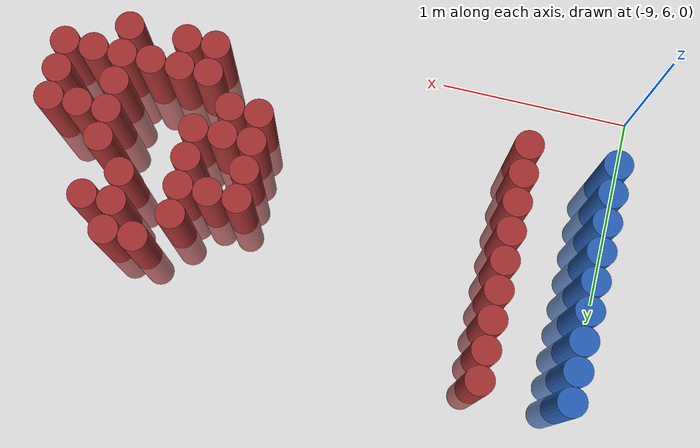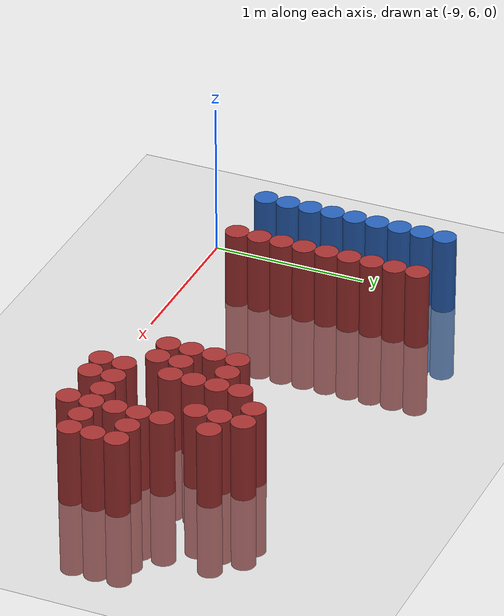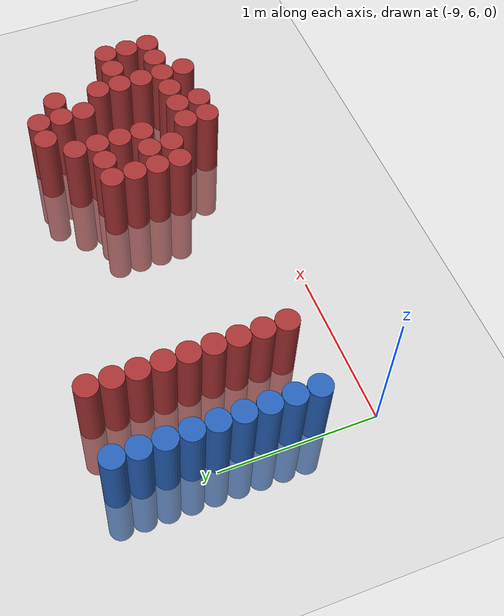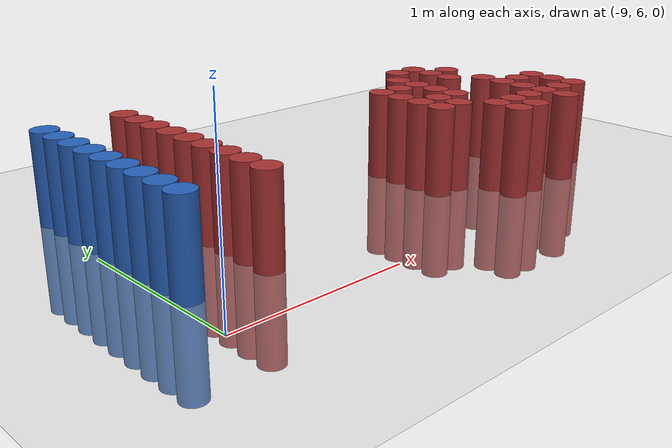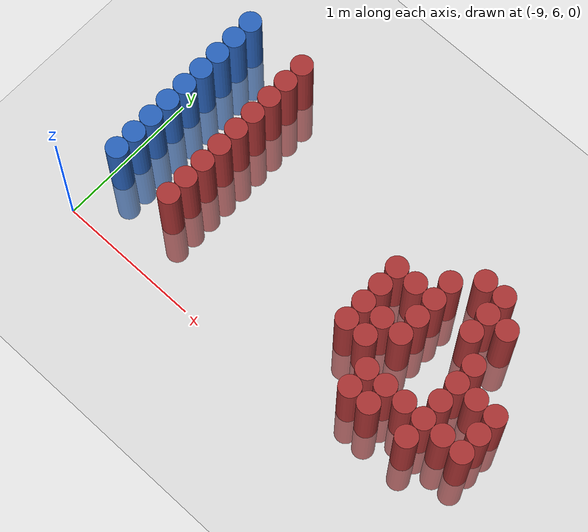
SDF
<sdf version="1.6">
 <world name="default">
  <model name="ground_plane">
   <static>1</static>
   <link name="link">
    <collision name="collision">
     <geometry><plane><normal>0 0 1</normal><size>100 100</size></plane></geometry>
     <surface><friction><ode><mu>100</mu><mu2>50</mu2></ode></friction></surface>
    </collision>
    <visual name="visual">
     <cast_shadows>0</cast_shadows>
     <geometry><plane><normal>0 0 1</normal><size>100 100</size></plane></geometry>
     <material>
      <script><uri>file://media/materials/scripts/gazebo.material</uri><name>Gazebo/Grey</name></script>
     </material>
    </visual>
   </link>
  </model>
  <model name="unit_cylinder_133">
   <static>1</static>
   <pose>-8.925000 6.375000 0.000000 0.000000 0.000000 0.000000</pose>
   <link name="link">
    <inertial>
     <mass>1</mass>
     <inertia><ixx>0.145833</ixx><ixy>0</ixy><ixz>0</ixz><iyy>0.145833</iyy><iyz>0</iyz><izz>0.125</izz></inertia>
    </inertial>
    <collision name="collision">
     <geometry><cylinder><radius>0.075000</radius><length>1</length></cylinder></geometry>
    </collision>
    <visual name="visual">
     <geometry><cylinder><radius>0.075000</radius><length>1</length></cylinder></geometry>
     <material>
      <ambient>0.152000 0.379000 0.720000 1</ambient>
      <diffuse>0.152000 0.379000 0.720000 1</diffuse>
     </material>
     <material>
      <script><name>Gazebo/Grey</name><uri>file://media/materials/scripts/gazebo.material</uri></script>
     </material>
    </visual>
   </link>
  </model>
  <model name="unit_cylinder_134">
   <static>1</static>
   <pose>-8.925000 6.525000 0.000000 0.000000 0.000000 0.000000</pose>
   <link name="link">
    <inertial>
     <mass>1</mass>
     <inertia><ixx>0.145833</ixx><ixy>0</ixy><ixz>0</ixz><iyy>0.145833</iyy><iyz>0</iyz><izz>0.125</izz></inertia>
    </inertial>
    <collision name="collision">
     <geometry><cylinder><radius>0.075000</radius><length>1</length></cylinder></geometry>
    </collision>
    <visual name="visual">
     <geometry><cylinder><radius>0.075000</radius><length>1</length></cylinder></geometry>
     <material>
      <ambient>0.152000 0.379000 0.720000 1</ambient>
      <diffuse>0.152000 0.379000 0.720000 1</diffuse>
     </material>
     <material>
      <script><name>Gazebo/Grey</name><uri>file://media/materials/scripts/gazebo.material</uri></script>
     </material>
    </visual>
   </link>
  </model>
  <model name="unit_cylinder_135">
   <static>1</static>
   <pose>-8.925000 6.675000 0.000000 0.000000 0.000000 0.000000</pose>
   <link name="link">
    <inertial>
     <mass>1</mass>
     <inertia><ixx>0.145833</ixx><ixy>0</ixy><ixz>0</ixz><iyy>0.145833</iyy><iyz>0</iyz><izz>0.125</izz></inertia>
    </inertial>
    <collision name="collision">
     <geometry><cylinder><radius>0.075000</radius><length>1</length></cylinder></geometry>
    </collision>
    <visual name="visual">
     <geometry><cylinder><radius>0.075000</radius><length>1</length></cylinder></geometry>
     <material>
      <ambient>0.152000 0.379000 0.720000 1</ambient>
      <diffuse>0.152000 0.379000 0.720000 1</diffuse>
     </material>
     <material>
      <script><name>Gazebo/Grey</name><uri>file://media/materials/scripts/gazebo.material</uri></script>
     </material>
    </visual>
   </link>
  </model>
  <model name="unit_cylinder_136">
   <static>1</static>
   <pose>-8.925000 6.825000 0.000000 0.000000 0.000000 0.000000</pose>
   <link name="link">
    <inertial>
     <mass>1</mass>
     <inertia><ixx>0.145833</ixx><ixy>0</ixy><ixz>0</ixz><iyy>0.145833</iyy><iyz>0</iyz><izz>0.125</izz></inertia>
    </inertial>
    <collision name="collision">
     <geometry><cylinder><radius>0.075000</radius><length>1</length></cylinder></geometry>
    </collision>
    <visual name="visual">
     <geometry><cylinder><radius>0.075000</radius><length>1</length></cylinder></geometry>
     <material>
      <ambient>0.152000 0.379000 0.720000 1</ambient>
      <diffuse>0.152000 0.379000 0.720000 1</diffuse>
     </material>
     <material>
      <script><name>Gazebo/Grey</name><uri>file://media/materials/scripts/gazebo.material</uri></script>
     </material>
    </visual>
   </link>
  </model>
  <model name="unit_cylinder_137">
   <static>1</static>
   <pose>-8.925000 6.975000 0.000000 0.000000 0.000000 0.000000</pose>
   <link name="link">
    <inertial>
     <mass>1</mass>
     <inertia><ixx>0.145833</ixx><ixy>0</ixy><ixz>0</ixz><iyy>0.145833</iyy><iyz>0</iyz><izz>0.125</izz></inertia>
    </inertial>
    <collision name="collision">
     <geometry><cylinder><radius>0.075000</radius><length>1</length></cylinder></geometry>
    </collision>
    <visual name="visual">
     <geometry><cylinder><radius>0.075000</radius><length>1</length></cylinder></geometry>
     <material>
      <ambient>0.152000 0.379000 0.720000 1</ambient>
      <diffuse>0.152000 0.379000 0.720000 1</diffuse>
     </material>
     <material>
      <script><name>Gazebo/Grey</name><uri>file://media/materials/scripts/gazebo.material</uri></script>
     </material>
    </visual>
   </link>
  </model>
  <model name="unit_cylinder_138">
   <static>1</static>
   <pose>-8.925000 7.125000 0.000000 0.000000 0.000000 0.000000</pose>
   <link name="link">
    <inertial>
     <mass>1</mass>
     <inertia><ixx>0.145833</ixx><ixy>0</ixy><ixz>0</ixz><iyy>0.145833</iyy><iyz>0</iyz><izz>0.125</izz></inertia>
    </inertial>
    <collision name="collision">
     <geometry><cylinder><radius>0.075000</radius><length>1</length></cylinder></geometry>
    </collision>
    <visual name="visual">
     <geometry><cylinder><radius>0.075000</radius><length>1</length></cylinder></geometry>
     <material>
      <ambient>0.152000 0.379000 0.720000 1</ambient>
      <diffuse>0.152000 0.379000 0.720000 1</diffuse>
     </material>
     <material>
      <script><name>Gazebo/Grey</name><uri>file://media/materials/scripts/gazebo.material</uri></script>
     </material>
    </visual>
   </link>
  </model>
  <model name="unit_cylinder_139">
   <static>1</static>
   <pose>-8.925000 7.275000 0.000000 0.000000 0.000000 0.000000</pose>
   <link name="link">
    <inertial>
     <mass>1</mass>
     <inertia><ixx>0.145833</ixx><ixy>0</ixy><ixz>0</ixz><iyy>0.145833</iyy><iyz>0</iyz><izz>0.125</izz></inertia>
    </inertial>
    <collision name="collision">
     <geometry><cylinder><radius>0.075000</radius><length>1</length></cylinder></geometry>
    </collision>
    <visual name="visual">
     <geometry><cylinder><radius>0.075000</radius><length>1</length></cylinder></geometry>
     <material>
      <ambient>0.152000 0.379000 0.720000 1</ambient>
      <diffuse>0.152000 0.379000 0.720000 1</diffuse>
     </material>
     <material>
      <script><name>Gazebo/Grey</name><uri>file://media/materials/scripts/gazebo.material</uri></script>
     </material>
    </visual>
   </link>
  </model>
  <model name="unit_cylinder_140">
   <static>1</static>
   <pose>-8.925000 7.425000 0.000000 0.000000 0.000000 0.000000</pose>
   <link name="link">
    <inertial>
     <mass>1</mass>
     <inertia><ixx>0.145833</ixx><ixy>0</ixy><ixz>0</ixz><iyy>0.145833</iyy><iyz>0</iyz><izz>0.125</izz></inertia>
    </inertial>
    <collision name="collision">
     <geometry><cylinder><radius>0.075000</radius><length>1</length></cylinder></geometry>
    </collision>
    <visual name="visual">
     <geometry><cylinder><radius>0.075000</radius><length>1</length></cylinder></geometry>
     <material>
      <ambient>0.152000 0.379000 0.720000 1</ambient>
      <diffuse>0.152000 0.379000 0.720000 1</diffuse>
     </material>
     <material>
      <script><name>Gazebo/Grey</name><uri>file://media/materials/scripts/gazebo.material</uri></script>
     </material>
    </visual>
   </link>
  </model>
  <model name="unit_cylinder_141">
   <static>1</static>
   <pose>-8.925000 7.575000 0.000000 0.000000 0.000000 0.000000</pose>
   <link name="link">
    <inertial>
     <mass>1</mass>
     <inertia><ixx>0.145833</ixx><ixy>0</ixy><ixz>0</ixz><iyy>0.145833</iyy><iyz>0</iyz><izz>0.125</izz></inertia>
    </inertial>
    <collision name="collision">
     <geometry><cylinder><radius>0.075000</radius><length>1</length></cylinder></geometry>
    </collision>
    <visual name="visual">
     <geometry><cylinder><radius>0.075000</radius><length>1</length></cylinder></geometry>
     <material>
      <ambient>0.152000 0.379000 0.720000 1</ambient>
      <diffuse>0.152000 0.379000 0.720000 1</diffuse>
     </material>
     <material>
      <script><name>Gazebo/Grey</name><uri>file://media/materials/scripts/gazebo.material</uri></script>
     </material>
    </visual>
   </link>
  </model>
  <model name="unit_cylinder_167">
   <static>1</static>
   <pose>-8.475000 6.375000 0.000000 0.000000 0.000000 0.000000</pose>
   <link name="link">
    <inertial>
     <mass>1</mass>
     <inertia><ixx>0.145833</ixx><ixy>0</ixy><ixz>0</ixz><iyy>0.145833</iyy><iyz>0</iyz><izz>0.125</izz></inertia>
    </inertial>
    <collision name="collision">
     <geometry><cylinder><radius>0.075000</radius><length>1</length></cylinder></geometry>
    </collision>
    <visual name="visual">
     <geometry><cylinder><radius>0.075000</radius><length>1</length></cylinder></geometry>
     <material>
      <ambient>0.648000 0.192000 0.192000 1</ambient>
      <diffuse>0.648000 0.192000 0.192000 1</diffuse>
     </material>
     <material>
      <script><name>Gazebo/Grey</name><uri>file://media/materials/scripts/gazebo.material</uri></script>
     </material>
    </visual>
   </link>
  </model>
  <model name="unit_cylinder_168">
   <static>1</static>
   <pose>-8.475000 6.525000 0.000000 0.000000 0.000000 0.000000</pose>
   <link name="link">
    <inertial>
     <mass>1</mass>
     <inertia><ixx>0.145833</ixx><ixy>0</ixy><ixz>0</ixz><iyy>0.145833</iyy><iyz>0</iyz><izz>0.125</izz></inertia>
    </inertial>
    <collision name="collision">
     <geometry><cylinder><radius>0.075000</radius><length>1</length></cylinder></geometry>
    </collision>
    <visual name="visual">
     <geometry><cylinder><radius>0.075000</radius><length>1</length></cylinder></geometry>
     <material>
      <ambient>0.648000 0.192000 0.192000 1</ambient>
      <diffuse>0.648000 0.192000 0.192000 1</diffuse>
     </material>
     <material>
      <script><name>Gazebo/Grey</name><uri>file://media/materials/scripts/gazebo.material</uri></script>
     </material>
    </visual>
   </link>
  </model>
  <model name="unit_cylinder_169">
   <static>1</static>
   <pose>-8.475000 6.675000 0.000000 0.000000 0.000000 0.000000</pose>
   <link name="link">
    <inertial>
     <mass>1</mass>
     <inertia><ixx>0.145833</ixx><ixy>0</ixy><ixz>0</ixz><iyy>0.145833</iyy><iyz>0</iyz><izz>0.125</izz></inertia>
    </inertial>
    <collision name="collision">
     <geometry><cylinder><radius>0.075000</radius><length>1</length></cylinder></geometry>
    </collision>
    <visual name="visual">
     <geometry><cylinder><radius>0.075000</radius><length>1</length></cylinder></geometry>
     <material>
      <ambient>0.648000 0.192000 0.192000 1</ambient>
      <diffuse>0.648000 0.192000 0.192000 1</diffuse>
     </material>
     <material>
      <script><name>Gazebo/Grey</name><uri>file://media/materials/scripts/gazebo.material</uri></script>
     </material>
    </visual>
   </link>
  </model>
  <model name="unit_cylinder_170">
   <static>1</static>
   <pose>-8.475000 6.825000 0.000000 0.000000 0.000000 0.000000</pose>
   <link name="link">
    <inertial>
     <mass>1</mass>
     <inertia><ixx>0.145833</ixx><ixy>0</ixy><ixz>0</ixz><iyy>0.145833</iyy><iyz>0</iyz><izz>0.125</izz></inertia>
    </inertial>
    <collision name="collision">
     <geometry><cylinder><radius>0.075000</radius><length>1</length></cylinder></geometry>
    </collision>
    <visual name="visual">
     <geometry><cylinder><radius>0.075000</radius><length>1</length></cylinder></geometry>
     <material>
      <ambient>0.648000 0.192000 0.192000 1</ambient>
      <diffuse>0.648000 0.192000 0.192000 1</diffuse>
     </material>
     <material>
      <script><name>Gazebo/Grey</name><uri>file://media/materials/scripts/gazebo.material</uri></script>
     </material>
    </visual>
   </link>
  </model>
  <model name="unit_cylinder_171">
   <static>1</static>
   <pose>-8.475000 6.975000 0.000000 0.000000 0.000000 0.000000</pose>
   <link name="link">
    <inertial>
     <mass>1</mass>
     <inertia><ixx>0.145833</ixx><ixy>0</ixy><ixz>0</ixz><iyy>0.145833</iyy><iyz>0</iyz><izz>0.125</izz></inertia>
    </inertial>
    <collision name="collision">
     <geometry><cylinder><radius>0.075000</radius><length>1</length></cylinder></geometry>
    </collision>
    <visual name="visual">
     <geometry><cylinder><radius>0.075000</radius><length>1</length></cylinder></geometry>
     <material>
      <ambient>0.648000 0.192000 0.192000 1</ambient>
      <diffuse>0.648000 0.192000 0.192000 1</diffuse>
     </material>
     <material>
      <script><name>Gazebo/Grey</name><uri>file://media/materials/scripts/gazebo.material</uri></script>
     </material>
    </visual>
   </link>
  </model>
  <model name="unit_cylinder_172">
   <static>1</static>
   <pose>-8.475000 7.125000 0.000000 0.000000 0.000000 0.000000</pose>
   <link name="link">
    <inertial>
     <mass>1</mass>
     <inertia><ixx>0.145833</ixx><ixy>0</ixy><ixz>0</ixz><iyy>0.145833</iyy><iyz>0</iyz><izz>0.125</izz></inertia>
    </inertial>
    <collision name="collision">
     <geometry><cylinder><radius>0.075000</radius><length>1</length></cylinder></geometry>
    </collision>
    <visual name="visual">
     <geometry><cylinder><radius>0.075000</radius><length>1</length></cylinder></geometry>
     <material>
      <ambient>0.648000 0.192000 0.192000 1</ambient>
      <diffuse>0.648000 0.192000 0.192000 1</diffuse>
     </material>
     <material>
      <script><name>Gazebo/Grey</name><uri>file://media/materials/scripts/gazebo.material</uri></script>
     </material>
    </visual>
   </link>
  </model>
  <model name="unit_cylinder_173">
   <static>1</static>
   <pose>-8.475000 7.275000 0.000000 0.000000 0.000000 0.000000</pose>
   <link name="link">
    <inertial>
     <mass>1</mass>
     <inertia><ixx>0.145833</ixx><ixy>0</ixy><ixz>0</ixz><iyy>0.145833</iyy><iyz>0</iyz><izz>0.125</izz></inertia>
    </inertial>
    <collision name="collision">
     <geometry><cylinder><radius>0.075000</radius><length>1</length></cylinder></geometry>
    </collision>
    <visual name="visual">
     <geometry><cylinder><radius>0.075000</radius><length>1</length></cylinder></geometry>
     <material>
      <ambient>0.648000 0.192000 0.192000 1</ambient>
      <diffuse>0.648000 0.192000 0.192000 1</diffuse>
     </material>
     <material>
      <script><name>Gazebo/Grey</name><uri>file://media/materials/scripts/gazebo.material</uri></script>
     </material>
    </visual>
   </link>
  </model>
  <model name="unit_cylinder_174">
   <static>1</static>
   <pose>-8.475000 7.425000 0.000000 0.000000 0.000000 0.000000</pose>
   <link name="link">
    <inertial>
     <mass>1</mass>
     <inertia><ixx>0.145833</ixx><ixy>0</ixy><ixz>0</ixz><iyy>0.145833</iyy><iyz>0</iyz><izz>0.125</izz></inertia>
    </inertial>
    <collision name="collision">
     <geometry><cylinder><radius>0.075000</radius><length>1</length></cylinder></geometry>
    </collision>
    <visual name="visual">
     <geometry><cylinder><radius>0.075000</radius><length>1</length></cylinder></geometry>
     <material>
      <ambient>0.648000 0.192000 0.192000 1</ambient>
      <diffuse>0.648000 0.192000 0.192000 1</diffuse>
     </material>
     <material>
      <script><name>Gazebo/Grey</name><uri>file://media/materials/scripts/gazebo.material</uri></script>
     </material>
    </visual>
   </link>
  </model>
  <model name="unit_cylinder_175">
   <static>1</static>
   <pose>-8.475000 7.575000 0.000000 0.000000 0.000000 0.000000</pose>
   <link name="link">
    <inertial>
     <mass>1</mass>
     <inertia><ixx>0.145833</ixx><ixy>0</ixy><ixz>0</ixz><iyy>0.145833</iyy><iyz>0</iyz><izz>0.125</izz></inertia>
    </inertial>
    <collision name="collision">
     <geometry><cylinder><radius>0.075000</radius><length>1</length></cylinder></geometry>
    </collision>
    <visual name="visual">
     <geometry><cylinder><radius>0.075000</radius><length>1</length></cylinder></geometry>
     <material>
      <ambient>0.648000 0.192000 0.192000 1</ambient>
      <diffuse>0.648000 0.192000 0.192000 1</diffuse>
     </material>
     <material>
      <script><name>Gazebo/Grey</name><uri>file://media/materials/scripts/gazebo.material</uri></script>
     </material>
    </visual>
   </link>
  </model>
  <model name="unit_cylinder_196">
   <static>1</static>
   <pose>-7.125000 6.525000 0.000000 0.000000 0.000000 0.000000</pose>
   <link name="link">
    <inertial>
     <mass>1</mass>
     <inertia><ixx>0.145833</ixx><ixy>0</ixy><ixz>0</ixz><iyy>0.145833</iyy><iyz>0</iyz><izz>0.125</izz></inertia>
    </inertial>
    <collision name="collision">
     <geometry><cylinder><radius>0.075000</radius><length>1</length></cylinder></geometry>
    </collision>
    <visual name="visual">
     <geometry><cylinder><radius>0.075000</radius><length>1</length></cylinder></geometry>
     <material>
      <ambient>0.648000 0.192000 0.192000 1</ambient>
      <diffuse>0.648000 0.192000 0.192000 1</diffuse>
     </material>
     <material>
      <script><name>Gazebo/Grey</name><uri>file://media/materials/scripts/gazebo.material</uri></script>
     </material>
    </visual>
   </link>
  </model>
  <model name="unit_cylinder_197">
   <static>1</static>
   <pose>-7.125000 6.675000 0.000000 0.000000 0.000000 0.000000</pose>
   <link name="link">
    <inertial>
     <mass>1</mass>
     <inertia><ixx>0.145833</ixx><ixy>0</ixy><ixz>0</ixz><iyy>0.145833</iyy><iyz>0</iyz><izz>0.125</izz></inertia>
    </inertial>
    <collision name="collision">
     <geometry><cylinder><radius>0.075000</radius><length>1</length></cylinder></geometry>
    </collision>
    <visual name="visual">
     <geometry><cylinder><radius>0.075000</radius><length>1</length></cylinder></geometry>
     <material>
      <ambient>0.648000 0.192000 0.192000 1</ambient>
      <diffuse>0.648000 0.192000 0.192000 1</diffuse>
     </material>
     <material>
      <script><name>Gazebo/Grey</name><uri>file://media/materials/scripts/gazebo.material</uri></script>
     </material>
    </visual>
   </link>
  </model>
  <model name="unit_cylinder_198">
   <static>1</static>
   <pose>-7.125000 6.825000 0.000000 0.000000 0.000000 0.000000</pose>
   <link name="link">
    <inertial>
     <mass>1</mass>
     <inertia><ixx>0.145833</ixx><ixy>0</ixy><ixz>0</ixz><iyy>0.145833</iyy><iyz>0</iyz><izz>0.125</izz></inertia>
    </inertial>
    <collision name="collision">
     <geometry><cylinder><radius>0.075000</radius><length>1</length></cylinder></geometry>
    </collision>
    <visual name="visual">
     <geometry><cylinder><radius>0.075000</radius><length>1</length></cylinder></geometry>
     <material>
      <ambient>0.648000 0.192000 0.192000 1</ambient>
      <diffuse>0.648000 0.192000 0.192000 1</diffuse>
     </material>
     <material>
      <script><name>Gazebo/Grey</name><uri>file://media/materials/scripts/gazebo.material</uri></script>
     </material>
    </visual>
   </link>
  </model>
  <model name="unit_cylinder_199">
   <static>1</static>
   <pose>-7.125000 6.975000 0.000000 0.000000 0.000000 0.000000</pose>
   <link name="link">
    <inertial>
     <mass>1</mass>
     <inertia><ixx>0.145833</ixx><ixy>0</ixy><ixz>0</ixz><iyy>0.145833</iyy><iyz>0</iyz><izz>0.125</izz></inertia>
    </inertial>
    <collision name="collision">
     <geometry><cylinder><radius>0.075000</radius><length>1</length></cylinder></geometry>
    </collision>
    <visual name="visual">
     <geometry><cylinder><radius>0.075000</radius><length>1</length></cylinder></geometry>
     <material>
      <ambient>0.648000 0.192000 0.192000 1</ambient>
      <diffuse>0.648000 0.192000 0.192000 1</diffuse>
     </material>
     <material>
      <script><name>Gazebo/Grey</name><uri>file://media/materials/scripts/gazebo.material</uri></script>
     </material>
    </visual>
   </link>
  </model>
  <model name="unit_cylinder_201">
   <static>1</static>
   <pose>-6.975000 6.525000 0.000000 0.000000 0.000000 0.000000</pose>
   <link name="link">
    <inertial>
     <mass>1</mass>
     <inertia><ixx>0.145833</ixx><ixy>0</ixy><ixz>0</ixz><iyy>0.145833</iyy><iyz>0</iyz><izz>0.125</izz></inertia>
    </inertial>
    <collision name="collision">
     <geometry><cylinder><radius>0.075000</radius><length>1</length></cylinder></geometry>
    </collision>
    <visual name="visual">
     <geometry><cylinder><radius>0.075000</radius><length>1</length></cylinder></geometry>
     <material>
      <ambient>0.648000 0.192000 0.192000 1</ambient>
      <diffuse>0.648000 0.192000 0.192000 1</diffuse>
     </material>
     <material>
      <script><name>Gazebo/Grey</name><uri>file://media/materials/scripts/gazebo.material</uri></script>
     </material>
    </visual>
   </link>
  </model>
  <model name="unit_cylinder_202">
   <static>1</static>
   <pose>-6.975000 6.675000 0.000000 0.000000 0.000000 0.000000</pose>
   <link name="link">
    <inertial>
     <mass>1</mass>
     <inertia><ixx>0.145833</ixx><ixy>0</ixy><ixz>0</ixz><iyy>0.145833</iyy><iyz>0</iyz><izz>0.125</izz></inertia>
    </inertial>
    <collision name="collision">
     <geometry><cylinder><radius>0.075000</radius><length>1</length></cylinder></geometry>
    </collision>
    <visual name="visual">
     <geometry><cylinder><radius>0.075000</radius><length>1</length></cylinder></geometry>
     <material>
      <ambient>0.648000 0.192000 0.192000 1</ambient>
      <diffuse>0.648000 0.192000 0.192000 1</diffuse>
     </material>
     <material>
      <script><name>Gazebo/Grey</name><uri>file://media/materials/scripts/gazebo.material</uri></script>
     </material>
    </visual>
   </link>
  </model>
  <model name="unit_cylinder_203">
   <static>1</static>
   <pose>-6.975000 6.975000 0.000000 0.000000 0.000000 0.000000</pose>
   <link name="link">
    <inertial>
     <mass>1</mass>
     <inertia><ixx>0.145833</ixx><ixy>0</ixy><ixz>0</ixz><iyy>0.145833</iyy><iyz>0</iyz><izz>0.125</izz></inertia>
    </inertial>
    <collision name="collision">
     <geometry><cylinder><radius>0.075000</radius><length>1</length></cylinder></geometry>
    </collision>
    <visual name="visual">
     <geometry><cylinder><radius>0.075000</radius><length>1</length></cylinder></geometry>
     <material>
      <ambient>0.648000 0.192000 0.192000 1</ambient>
      <diffuse>0.648000 0.192000 0.192000 1</diffuse>
     </material>
     <material>
      <script><name>Gazebo/Grey</name><uri>file://media/materials/scripts/gazebo.material</uri></script>
     </material>
    </visual>
   </link>
  </model>
  <model name="unit_cylinder_206">
   <static>1</static>
   <pose>-6.825000 6.225000 0.000000 0.000000 0.000000 0.000000</pose>
   <link name="link">
    <inertial>
     <mass>1</mass>
     <inertia><ixx>0.145833</ixx><ixy>0</ixy><ixz>0</ixz><iyy>0.145833</iyy><iyz>0</iyz><izz>0.125</izz></inertia>
    </inertial>
    <collision name="collision">
     <geometry><cylinder><radius>0.075000</radius><length>1</length></cylinder></geometry>
    </collision>
    <visual name="visual">
     <geometry><cylinder><radius>0.075000</radius><length>1</length></cylinder></geometry>
     <material>
      <ambient>0.648000 0.192000 0.192000 1</ambient>
      <diffuse>0.648000 0.192000 0.192000 1</diffuse>
     </material>
     <material>
      <script><name>Gazebo/Grey</name><uri>file://media/materials/scripts/gazebo.material</uri></script>
     </material>
    </visual>
   </link>
  </model>
  <model name="unit_cylinder_207">
   <static>1</static>
   <pose>-6.825000 6.375000 0.000000 0.000000 0.000000 0.000000</pose>
   <link name="link">
    <inertial>
     <mass>1</mass>
     <inertia><ixx>0.145833</ixx><ixy>0</ixy><ixz>0</ixz><iyy>0.145833</iyy><iyz>0</iyz><izz>0.125</izz></inertia>
    </inertial>
    <collision name="collision">
     <geometry><cylinder><radius>0.075000</radius><length>1</length></cylinder></geometry>
    </collision>
    <visual name="visual">
     <geometry><cylinder><radius>0.075000</radius><length>1</length></cylinder></geometry>
     <material>
      <ambient>0.648000 0.192000 0.192000 1</ambient>
      <diffuse>0.648000 0.192000 0.192000 1</diffuse>
     </material>
     <material>
      <script><name>Gazebo/Grey</name><uri>file://media/materials/scripts/gazebo.material</uri></script>
     </material>
    </visual>
   </link>
  </model>
  <model name="unit_cylinder_208">
   <static>1</static>
   <pose>-6.825000 6.675000 0.000000 0.000000 0.000000 0.000000</pose>
   <link name="link">
    <inertial>
     <mass>1</mass>
     <inertia><ixx>0.145833</ixx><ixy>0</ixy><ixz>0</ixz><iyy>0.145833</iyy><iyz>0</iyz><izz>0.125</izz></inertia>
    </inertial>
    <collision name="collision">
     <geometry><cylinder><radius>0.075000</radius><length>1</length></cylinder></geometry>
    </collision>
    <visual name="visual">
     <geometry><cylinder><radius>0.075000</radius><length>1</length></cylinder></geometry>
     <material>
      <ambient>0.648000 0.192000 0.192000 1</ambient>
      <diffuse>0.648000 0.192000 0.192000 1</diffuse>
     </material>
     <material>
      <script><name>Gazebo/Grey</name><uri>file://media/materials/scripts/gazebo.material</uri></script>
     </material>
    </visual>
   </link>
  </model>
  <model name="unit_cylinder_209">
   <static>1</static>
   <pose>-6.825000 6.825000 0.000000 0.000000 0.000000 0.000000</pose>
   <link name="link">
    <inertial>
     <mass>1</mass>
     <inertia><ixx>0.145833</ixx><ixy>0</ixy><ixz>0</ixz><iyy>0.145833</iyy><iyz>0</iyz><izz>0.125</izz></inertia>
    </inertial>
    <collision name="collision">
     <geometry><cylinder><radius>0.075000</radius><length>1</length></cylinder></geometry>
    </collision>
    <visual name="visual">
     <geometry><cylinder><radius>0.075000</radius><length>1</length></cylinder></geometry>
     <material>
      <ambient>0.648000 0.192000 0.192000 1</ambient>
      <diffuse>0.648000 0.192000 0.192000 1</diffuse>
     </material>
     <material>
      <script><name>Gazebo/Grey</name><uri>file://media/materials/scripts/gazebo.material</uri></script>
     </material>
    </visual>
   </link>
  </model>
  <model name="unit_cylinder_210">
   <static>1</static>
   <pose>-6.825000 6.975000 0.000000 0.000000 0.000000 0.000000</pose>
   <link name="link">
    <inertial>
     <mass>1</mass>
     <inertia><ixx>0.145833</ixx><ixy>0</ixy><ixz>0</ixz><iyy>0.145833</iyy><iyz>0</iyz><izz>0.125</izz></inertia>
    </inertial>
    <collision name="collision">
     <geometry><cylinder><radius>0.075000</radius><length>1</length></cylinder></geometry>
    </collision>
    <visual name="visual">
     <geometry><cylinder><radius>0.075000</radius><length>1</length></cylinder></geometry>
     <material>
      <ambient>0.648000 0.192000 0.192000 1</ambient>
      <diffuse>0.648000 0.192000 0.192000 1</diffuse>
     </material>
     <material>
      <script><name>Gazebo/Grey</name><uri>file://media/materials/scripts/gazebo.material</uri></script>
     </material>
    </visual>
   </link>
  </model>
  <model name="unit_cylinder_211">
   <static>1</static>
   <pose>-6.825000 7.125000 0.000000 0.000000 0.000000 0.000000</pose>
   <link name="link">
    <inertial>
     <mass>1</mass>
     <inertia><ixx>0.145833</ixx><ixy>0</ixy><ixz>0</ixz><iyy>0.145833</iyy><iyz>0</iyz><izz>0.125</izz></inertia>
    </inertial>
    <collision name="collision">
     <geometry><cylinder><radius>0.075000</radius><length>1</length></cylinder></geometry>
    </collision>
    <visual name="visual">
     <geometry><cylinder><radius>0.075000</radius><length>1</length></cylinder></geometry>
     <material>
      <ambient>0.648000 0.192000 0.192000 1</ambient>
      <diffuse>0.648000 0.192000 0.192000 1</diffuse>
     </material>
     <material>
      <script><name>Gazebo/Grey</name><uri>file://media/materials/scripts/gazebo.material</uri></script>
     </material>
    </visual>
   </link>
  </model>
  <model name="unit_cylinder_214">
   <static>1</static>
   <pose>-6.675000 6.225000 0.000000 0.000000 0.000000 0.000000</pose>
   <link name="link">
    <inertial>
     <mass>1</mass>
     <inertia><ixx>0.145833</ixx><ixy>0</ixy><ixz>0</ixz><iyy>0.145833</iyy><iyz>0</iyz><izz>0.125</izz></inertia>
    </inertial>
    <collision name="collision">
     <geometry><cylinder><radius>0.075000</radius><length>1</length></cylinder></geometry>
    </collision>
    <visual name="visual">
     <geometry><cylinder><radius>0.075000</radius><length>1</length></cylinder></geometry>
     <material>
      <ambient>0.648000 0.192000 0.192000 1</ambient>
      <diffuse>0.648000 0.192000 0.192000 1</diffuse>
     </material>
     <material>
      <script><name>Gazebo/Grey</name><uri>file://media/materials/scripts/gazebo.material</uri></script>
     </material>
    </visual>
   </link>
  </model>
  <model name="unit_cylinder_215">
   <static>1</static>
   <pose>-6.675000 6.375000 0.000000 0.000000 0.000000 0.000000</pose>
   <link name="link">
    <inertial>
     <mass>1</mass>
     <inertia><ixx>0.145833</ixx><ixy>0</ixy><ixz>0</ixz><iyy>0.145833</iyy><iyz>0</iyz><izz>0.125</izz></inertia>
    </inertial>
    <collision name="collision">
     <geometry><cylinder><radius>0.075000</radius><length>1</length></cylinder></geometry>
    </collision>
    <visual name="visual">
     <geometry><cylinder><radius>0.075000</radius><length>1</length></cylinder></geometry>
     <material>
      <ambient>0.648000 0.192000 0.192000 1</ambient>
      <diffuse>0.648000 0.192000 0.192000 1</diffuse>
     </material>
     <material>
      <script><name>Gazebo/Grey</name><uri>file://media/materials/scripts/gazebo.material</uri></script>
     </material>
    </visual>
   </link>
  </model>
  <model name="unit_cylinder_216">
   <static>1</static>
   <pose>-6.675000 7.275000 0.000000 0.000000 0.000000 0.000000</pose>
   <link name="link">
    <inertial>
     <mass>1</mass>
     <inertia><ixx>0.145833</ixx><ixy>0</ixy><ixz>0</ixz><iyy>0.145833</iyy><iyz>0</iyz><izz>0.125</izz></inertia>
    </inertial>
    <collision name="collision">
     <geometry><cylinder><radius>0.075000</radius><length>1</length></cylinder></geometry>
    </collision>
    <visual name="visual">
     <geometry><cylinder><radius>0.075000</radius><length>1</length></cylinder></geometry>
     <material>
      <ambient>0.648000 0.192000 0.192000 1</ambient>
      <diffuse>0.648000 0.192000 0.192000 1</diffuse>
     </material>
     <material>
      <script><name>Gazebo/Grey</name><uri>file://media/materials/scripts/gazebo.material</uri></script>
     </material>
    </visual>
   </link>
  </model>
  <model name="unit_cylinder_221">
   <static>1</static>
   <pose>-6.525000 6.375000 0.000000 0.000000 0.000000 0.000000</pose>
   <link name="link">
    <inertial>
     <mass>1</mass>
     <inertia><ixx>0.145833</ixx><ixy>0</ixy><ixz>0</ixz><iyy>0.145833</iyy><iyz>0</iyz><izz>0.125</izz></inertia>
    </inertial>
    <collision name="collision">
     <geometry><cylinder><radius>0.075000</radius><length>1</length></cylinder></geometry>
    </collision>
    <visual name="visual">
     <geometry><cylinder><radius>0.075000</radius><length>1</length></cylinder></geometry>
     <material>
      <ambient>0.648000 0.192000 0.192000 1</ambient>
      <diffuse>0.648000 0.192000 0.192000 1</diffuse>
     </material>
     <material>
      <script><name>Gazebo/Grey</name><uri>file://media/materials/scripts/gazebo.material</uri></script>
     </material>
    </visual>
   </link>
  </model>
  <model name="unit_cylinder_222">
   <static>1</static>
   <pose>-6.525000 6.975000 0.000000 0.000000 0.000000 0.000000</pose>
   <link name="link">
    <inertial>
     <mass>1</mass>
     <inertia><ixx>0.145833</ixx><ixy>0</ixy><ixz>0</ixz><iyy>0.145833</iyy><iyz>0</iyz><izz>0.125</izz></inertia>
    </inertial>
    <collision name="collision">
     <geometry><cylinder><radius>0.075000</radius><length>1</length></cylinder></geometry>
    </collision>
    <visual name="visual">
     <geometry><cylinder><radius>0.075000</radius><length>1</length></cylinder></geometry>
     <material>
      <ambient>0.648000 0.192000 0.192000 1</ambient>
      <diffuse>0.648000 0.192000 0.192000 1</diffuse>
     </material>
     <material>
      <script><name>Gazebo/Grey</name><uri>file://media/materials/scripts/gazebo.material</uri></script>
     </material>
    </visual>
   </link>
  </model>
  <model name="unit_cylinder_223">
   <static>1</static>
   <pose>-6.525000 7.125000 0.000000 0.000000 0.000000 0.000000</pose>
   <link name="link">
    <inertial>
     <mass>1</mass>
     <inertia><ixx>0.145833</ixx><ixy>0</ixy><ixz>0</ixz><iyy>0.145833</iyy><iyz>0</iyz><izz>0.125</izz></inertia>
    </inertial>
    <collision name="collision">
     <geometry><cylinder><radius>0.075000</radius><length>1</length></cylinder></geometry>
    </collision>
    <visual name="visual">
     <geometry><cylinder><radius>0.075000</radius><length>1</length></cylinder></geometry>
     <material>
      <ambient>0.648000 0.192000 0.192000 1</ambient>
      <diffuse>0.648000 0.192000 0.192000 1</diffuse>
     </material>
     <material>
      <script><name>Gazebo/Grey</name><uri>file://media/materials/scripts/gazebo.material</uri></script>
     </material>
    </visual>
   </link>
  </model>
  <model name="unit_cylinder_224">
   <static>1</static>
   <pose>-6.525000 7.275000 0.000000 0.000000 0.000000 0.000000</pose>
   <link name="link">
    <inertial>
     <mass>1</mass>
     <inertia><ixx>0.145833</ixx><ixy>0</ixy><ixz>0</ixz><iyy>0.145833</iyy><iyz>0</iyz><izz>0.125</izz></inertia>
    </inertial>
    <collision name="collision">
     <geometry><cylinder><radius>0.075000</radius><length>1</length></cylinder></geometry>
    </collision>
    <visual name="visual">
     <geometry><cylinder><radius>0.075000</radius><length>1</length></cylinder></geometry>
     <material>
      <ambient>0.648000 0.192000 0.192000 1</ambient>
      <diffuse>0.648000 0.192000 0.192000 1</diffuse>
     </material>
     <material>
      <script><name>Gazebo/Grey</name><uri>file://media/materials/scripts/gazebo.material</uri></script>
     </material>
    </visual>
   </link>
  </model>
  <model name="unit_cylinder_230">
   <static>1</static>
   <pose>-6.375000 6.225000 0.000000 0.000000 0.000000 0.000000</pose>
   <link name="link">
    <inertial>
     <mass>1</mass>
     <inertia><ixx>0.145833</ixx><ixy>0</ixy><ixz>0</ixz><iyy>0.145833</iyy><iyz>0</iyz><izz>0.125</izz></inertia>
    </inertial>
    <collision name="collision">
     <geometry><cylinder><radius>0.075000</radius><length>1</length></cylinder></geometry>
    </collision>
    <visual name="visual">
     <geometry><cylinder><radius>0.075000</radius><length>1</length></cylinder></geometry>
     <material>
      <ambient>0.648000 0.192000 0.192000 1</ambient>
      <diffuse>0.648000 0.192000 0.192000 1</diffuse>
     </material>
     <material>
      <script><name>Gazebo/Grey</name><uri>file://media/materials/scripts/gazebo.material</uri></script>
     </material>
    </visual>
   </link>
  </model>
  <model name="unit_cylinder_231">
   <static>1</static>
   <pose>-6.375000 6.375000 0.000000 0.000000 0.000000 0.000000</pose>
   <link name="link">
    <inertial>
     <mass>1</mass>
     <inertia><ixx>0.145833</ixx><ixy>0</ixy><ixz>0</ixz><iyy>0.145833</iyy><iyz>0</iyz><izz>0.125</izz></inertia>
    </inertial>
    <collision name="collision">
     <geometry><cylinder><radius>0.075000</radius><length>1</length></cylinder></geometry>
    </collision>
    <visual name="visual">
     <geometry><cylinder><radius>0.075000</radius><length>1</length></cylinder></geometry>
     <material>
      <ambient>0.648000 0.192000 0.192000 1</ambient>
      <diffuse>0.648000 0.192000 0.192000 1</diffuse>
     </material>
     <material>
      <script><name>Gazebo/Grey</name><uri>file://media/materials/scripts/gazebo.material</uri></script>
     </material>
    </visual>
   </link>
  </model>
  <model name="unit_cylinder_232">
   <static>1</static>
   <pose>-6.375000 6.525000 0.000000 0.000000 0.000000 0.000000</pose>
   <link name="link">
    <inertial>
     <mass>1</mass>
     <inertia><ixx>0.145833</ixx><ixy>0</ixy><ixz>0</ixz><iyy>0.145833</iyy><iyz>0</iyz><izz>0.125</izz></inertia>
    </inertial>
    <collision name="collision">
     <geometry><cylinder><radius>0.075000</radius><length>1</length></cylinder></geometry>
    </collision>
    <visual name="visual">
     <geometry><cylinder><radius>0.075000</radius><length>1</length></cylinder></geometry>
     <material>
      <ambient>0.648000 0.192000 0.192000 1</ambient>
      <diffuse>0.648000 0.192000 0.192000 1</diffuse>
     </material>
     <material>
      <script><name>Gazebo/Grey</name><uri>file://media/materials/scripts/gazebo.material</uri></script>
     </material>
    </visual>
   </link>
  </model>
  <model name="unit_cylinder_233">
   <static>1</static>
   <pose>-6.375000 6.675000 0.000000 0.000000 0.000000 0.000000</pose>
   <link name="link">
    <inertial>
     <mass>1</mass>
     <inertia><ixx>0.145833</ixx><ixy>0</ixy><ixz>0</ixz><iyy>0.145833</iyy><iyz>0</iyz><izz>0.125</izz></inertia>
    </inertial>
    <collision name="collision">
     <geometry><cylinder><radius>0.075000</radius><length>1</length></cylinder></geometry>
    </collision>
    <visual name="visual">
     <geometry><cylinder><radius>0.075000</radius><length>1</length></cylinder></geometry>
     <material>
      <ambient>0.648000 0.192000 0.192000 1</ambient>
      <diffuse>0.648000 0.192000 0.192000 1</diffuse>
     </material>
     <material>
      <script><name>Gazebo/Grey</name><uri>file://media/materials/scripts/gazebo.material</uri></script>
     </material>
    </visual>
   </link>
  </model>
  <model name="unit_cylinder_234">
   <static>1</static>
   <pose>-6.375000 6.825000 0.000000 0.000000 0.000000 0.000000</pose>
   <link name="link">
    <inertial>
     <mass>1</mass>
     <inertia><ixx>0.145833</ixx><ixy>0</ixy><ixz>0</ixz><iyy>0.145833</iyy><iyz>0</iyz><izz>0.125</izz></inertia>
    </inertial>
    <collision name="collision">
     <geometry><cylinder><radius>0.075000</radius><length>1</length></cylinder></geometry>
    </collision>
    <visual name="visual">
     <geometry><cylinder><radius>0.075000</radius><length>1</length></cylinder></geometry>
     <material>
      <ambient>0.648000 0.192000 0.192000 1</ambient>
      <diffuse>0.648000 0.192000 0.192000 1</diffuse>
     </material>
     <material>
      <script><name>Gazebo/Grey</name><uri>file://media/materials/scripts/gazebo.material</uri></script>
     </material>
    </visual>
   </link>
  </model>
  <model name="unit_cylinder_235">
   <static>1</static>
   <pose>-6.375000 7.125000 0.000000 0.000000 0.000000 0.000000</pose>
   <link name="link">
    <inertial>
     <mass>1</mass>
     <inertia><ixx>0.145833</ixx><ixy>0</ixy><ixz>0</ixz><iyy>0.145833</iyy><iyz>0</iyz><izz>0.125</izz></inertia>
    </inertial>
    <collision name="collision">
     <geometry><cylinder><radius>0.075000</radius><length>1</length></cylinder></geometry>
    </collision>
    <visual name="visual">
     <geometry><cylinder><radius>0.075000</radius><length>1</length></cylinder></geometry>
     <material>
      <ambient>0.648000 0.192000 0.192000 1</ambient>
      <diffuse>0.648000 0.192000 0.192000 1</diffuse>
     </material>
     <material>
      <script><name>Gazebo/Grey</name><uri>file://media/materials/scripts/gazebo.material</uri></script>
     </material>
    </visual>
   </link>
  </model>
  <model name="unit_cylinder_238">
   <static>1</static>
   <pose>-6.225000 6.375000 0.000000 0.000000 0.000000 0.000000</pose>
   <link name="link">
    <inertial>
     <mass>1</mass>
     <inertia><ixx>0.145833</ixx><ixy>0</ixy><ixz>0</ixz><iyy>0.145833</iyy><iyz>0</iyz><izz>0.125</izz></inertia>
    </inertial>
    <collision name="collision">
     <geometry><cylinder><radius>0.075000</radius><length>1</length></cylinder></geometry>
    </collision>
    <visual name="visual">
     <geometry><cylinder><radius>0.075000</radius><length>1</length></cylinder></geometry>
     <material>
      <ambient>0.648000 0.192000 0.192000 1</ambient>
      <diffuse>0.648000 0.192000 0.192000 1</diffuse>
     </material>
     <material>
      <script><name>Gazebo/Grey</name><uri>file://media/materials/scripts/gazebo.material</uri></script>
     </material>
    </visual>
   </link>
  </model>
  <model name="unit_cylinder_239">
   <static>1</static>
   <pose>-6.225000 6.675000 0.000000 0.000000 0.000000 0.000000</pose>
   <link name="link">
    <inertial>
     <mass>1</mass>
     <inertia><ixx>0.145833</ixx><ixy>0</ixy><ixz>0</ixz><iyy>0.145833</iyy><iyz>0</iyz><izz>0.125</izz></inertia>
    </inertial>
    <collision name="collision">
     <geometry><cylinder><radius>0.075000</radius><length>1</length></cylinder></geometry>
    </collision>
    <visual name="visual">
     <geometry><cylinder><radius>0.075000</radius><length>1</length></cylinder></geometry>
     <material>
      <ambient>0.648000 0.192000 0.192000 1</ambient>
      <diffuse>0.648000 0.192000 0.192000 1</diffuse>
     </material>
     <material>
      <script><name>Gazebo/Grey</name><uri>file://media/materials/scripts/gazebo.material</uri></script>
     </material>
    </visual>
   </link>
  </model>
  <model name="unit_cylinder_244">
   <static>1</static>
   <pose>-6.075000 6.375000 0.000000 0.000000 0.000000 0.000000</pose>
   <link name="link">
    <inertial>
     <mass>1</mass>
     <inertia><ixx>0.145833</ixx><ixy>0</ixy><ixz>0</ixz><iyy>0.145833</iyy><iyz>0</iyz><izz>0.125</izz></inertia>
    </inertial>
    <collision name="collision">
     <geometry><cylinder><radius>0.075000</radius><length>1</length></cylinder></geometry>
    </collision>
    <visual name="visual">
     <geometry><cylinder><radius>0.075000</radius><length>1</length></cylinder></geometry>
     <material>
      <ambient>0.648000 0.192000 0.192000 1</ambient>
      <diffuse>0.648000 0.192000 0.192000 1</diffuse>
     </material>
     <material>
      <script><name>Gazebo/Grey</name><uri>file://media/materials/scripts/gazebo.material</uri></script>
     </material>
    </visual>
   </link>
  </model>
  <model name="unit_cylinder_245">
   <static>1</static>
   <pose>-6.075000 6.525000 0.000000 0.000000 0.000000 0.000000</pose>
   <link name="link">
    <inertial>
     <mass>1</mass>
     <inertia><ixx>0.145833</ixx><ixy>0</ixy><ixz>0</ixz><iyy>0.145833</iyy><iyz>0</iyz><izz>0.125</izz></inertia>
    </inertial>
    <collision name="collision">
     <geometry><cylinder><radius>0.075000</radius><length>1</length></cylinder></geometry>
    </collision>
    <visual name="visual">
     <geometry><cylinder><radius>0.075000</radius><length>1</length></cylinder></geometry>
     <material>
      <ambient>0.648000 0.192000 0.192000 1</ambient>
      <diffuse>0.648000 0.192000 0.192000 1</diffuse>
     </material>
     <material>
      <script><name>Gazebo/Grey</name><uri>file://media/materials/scripts/gazebo.material</uri></script>
     </material>
    </visual>
   </link>
  </model>
  <model name="unit_cylinder_246">
   <static>1</static>
   <pose>-6.075000 6.675000 0.000000 0.000000 0.000000 0.000000</pose>
   <link name="link">
    <inertial>
     <mass>1</mass>
     <inertia><ixx>0.145833</ixx><ixy>0</ixy><ixz>0</ixz><iyy>0.145833</iyy><iyz>0</iyz><izz>0.125</izz></inertia>
    </inertial>
    <collision name="collision">
     <geometry><cylinder><radius>0.075000</radius><length>1</length></cylinder></geometry>
    </collision>
    <visual name="visual">
     <geometry><cylinder><radius>0.075000</radius><length>1</length></cylinder></geometry>
     <material>
      <ambient>0.648000 0.192000 0.192000 1</ambient>
      <diffuse>0.648000 0.192000 0.192000 1</diffuse>
     </material>
     <material>
      <script><name>Gazebo/Grey</name><uri>file://media/materials/scripts/gazebo.material</uri></script>
     </material>
    </visual>
   </link>
  </model>
 </world>
</sdf>
